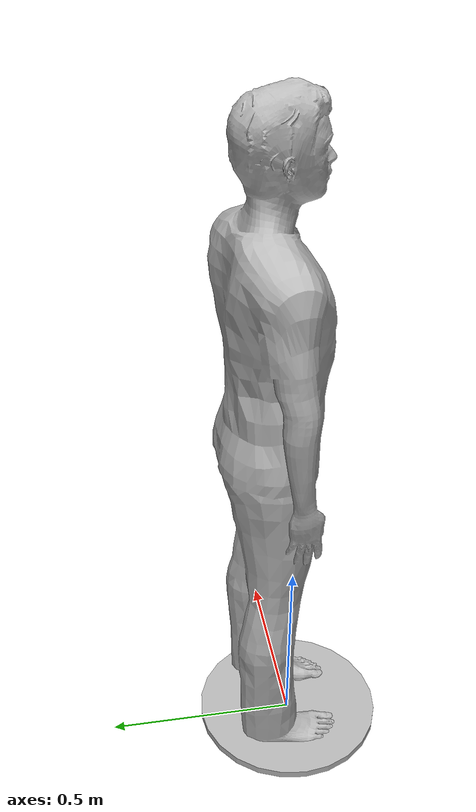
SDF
<?xml version="p1.0" ?>
<sdf version="1.5">
  <model name='actor_model'>
    <link name='link'>
      <inertial>
        <pose frame=''>0 0 0.76 0 -0 0</pose>
        <mass>64</mass>
        <inertia>
          <ixx>27.82</ixx>
          <ixy>0</ixy>
          <ixz>0</ixz>
          <iyy>24.88</iyy>
          <iyz>0</iyz>
          <izz>4.57</izz>
        </inertia>
      </inertial>'
      <collision name='bottom'>
        <pose frame=''>0 0 0.01 0 -0 0</pose>
        <geometry>
	  <cylinder>
	    <radius>0.25</radius>
	    <length>0.02</length>
          </cylinder>
        </geometry>
        <max_contacts>10</max_contacts>
        <surface>
          <contact>
            <ode/>
          </contact>
          <bounce/>
          <friction>
            <torsional>
              <ode/>
            </torsional>
            <ode/>
          </friction>
        </surface>
      </collision>
      <collision name='person'>
        <pose frame=''>0 0.1 0.01 0 -0 0</pose>
        <geometry>
          <mesh>
	    <scale>0.9 0.9 0.9</scale>
            <uri>model://person_standing/meshes/standing.dae</uri>
          </mesh>
        </geometry>
        <max_contacts>10</max_contacts>
        <surface>
          <contact>
            <ode/>
          </contact>
          <bounce/>
          <friction>
            <torsional>
              <ode/>
            </torsional>
            <ode/>
          </friction>
        </surface>
	</collision>
      <visual name='visual2'>
        <pose frame=''>0 0 0.01 0 -0 0</pose>
	<geometry>
	  <cylinder>
	    <radius>0.25</radius>
	    <length>0.02</length>
          </cylinder>
        </geometry>
      </visual>
      <visual name='visual'>
        <pose frame=''>0 0.1 0.01 0 -0 0</pose>
        <geometry>
          <mesh>
	    <scale>0.9 0.9 0.9</scale>
            <uri>model://person_standing/meshes/standing.dae</uri>
          </mesh>
        </geometry>
      </visual>
      <self_collide>0</self_collide>
      <enable_wind>0</enable_wind>
      <kinematic>0</kinematic>
    </link>
  </model>

</sdf>
